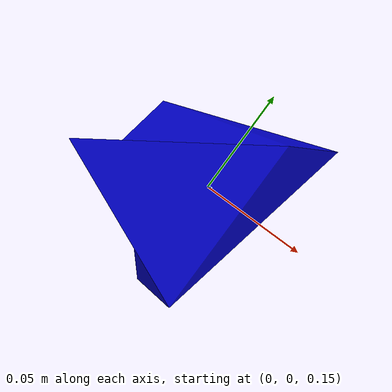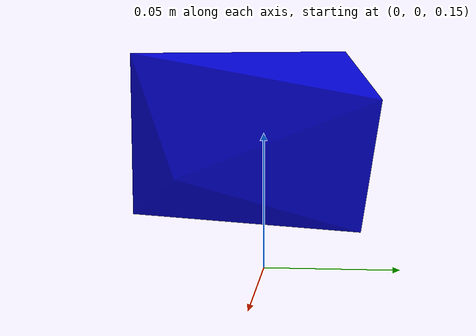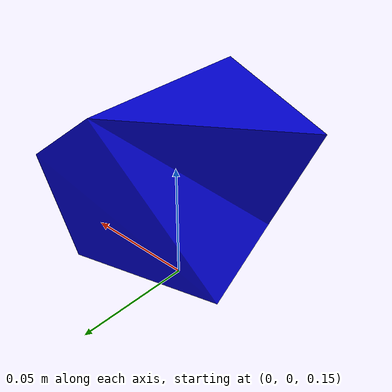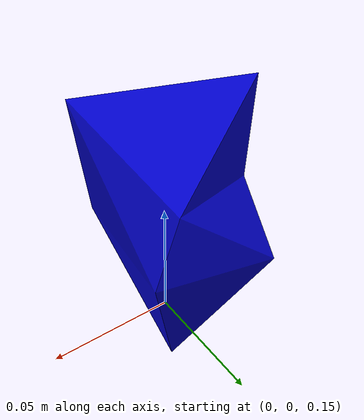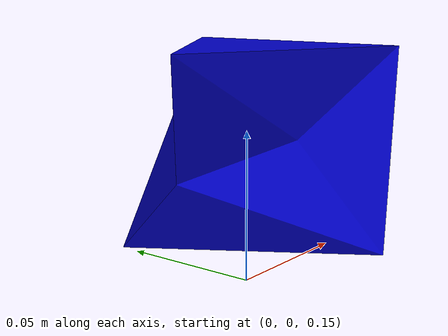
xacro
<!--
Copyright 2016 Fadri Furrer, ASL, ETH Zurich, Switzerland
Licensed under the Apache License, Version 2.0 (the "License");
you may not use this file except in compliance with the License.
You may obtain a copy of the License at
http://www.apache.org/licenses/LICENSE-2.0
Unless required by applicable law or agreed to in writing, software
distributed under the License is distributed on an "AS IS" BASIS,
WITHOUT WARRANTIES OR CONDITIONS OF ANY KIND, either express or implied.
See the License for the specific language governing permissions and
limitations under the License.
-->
<?xml version="1.0"?>

<robot name="3_poly" xmlns:xacro="http://ros.org/wiki/xacro">
  <xacro:property name="mesh_file" value="package://urdf_models/models/stone/3D_models_3.dae" />
  <xacro:property name="mass" value="1.0" />
  <link name="base_link"></link>

  <joint name="base_joint" type="fixed">
    <origin xyz="0 0 0" rpy="0 0 0" />
    <parent link="base_link" />
    <child link="base_link_inertia" />
  </joint>
  <link name="base_link_inertia">
      <inertial>
        <mass value="${mass}" />  <!-- [kg] -->
        <origin xyz="0 0 0.12" />
        <inertia ixx="1" ixy="0.0" ixz="0.0"
                 iyy="1" iyz="0.0"
                 izz="1" />
      </inertial>

      <visual>
        <origin xyz="0 0 0" rpy="0 0 0" />
        <geometry>
          <mesh filename="${mesh_file}" scale="1 1 1" />
        </geometry>
	<material name="blue">
	  <color rgba="0 0 .8 1"/>
	</material>
      </visual>

      <collision>
        <origin xyz="0 0 0" rpy="0 0 0" />
        <geometry>
          <mesh filename="${mesh_file}" scale="1 1 1" />
        </geometry>
      </collision>
    </link>

</robot>
